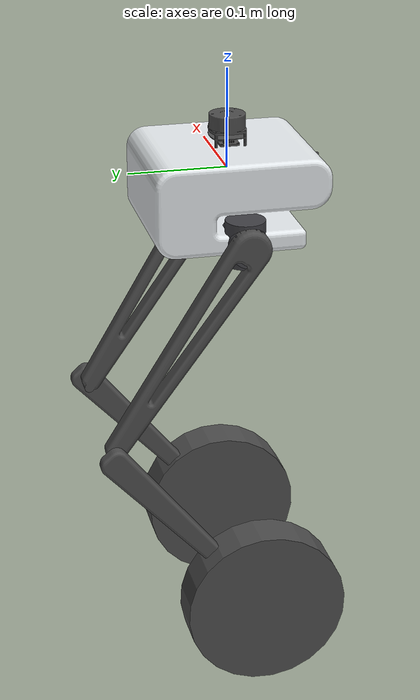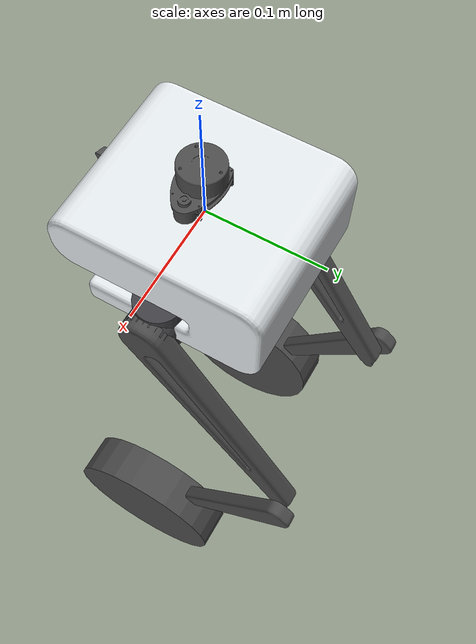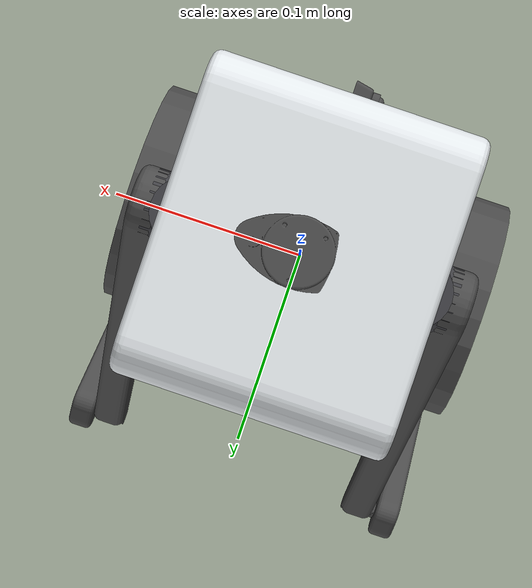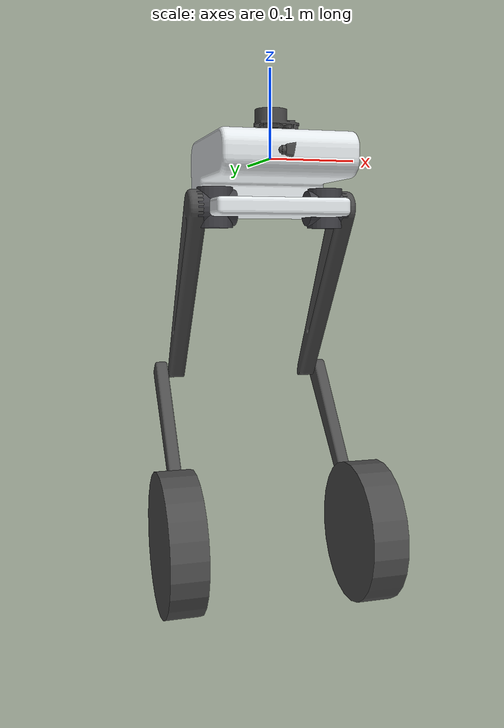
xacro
<?xml version="1.0"?>
<robot name="urdf_and_meshes_of_the_robot" xmlns:xacro="http://ros.org/wiki/xacro">

  <!-- Absolute path to config/controllers.yaml, passed in by balance.launch.py -->
  <xacro:arg name="controllers_file" default=""/>

  <!-- Reuse all links & joints (wheel/leg limits already widened for control) -->
  <xacro:include filename="$(find urdf_and_meshes_of_the_robot)/urdf/mybot_geometry.urdf.xacro"/>

  <!-- Publishes sensor_msgs/Imu on /imu                              -->
  <gazebo reference="IMU_link">
    <sensor name="imu_sensor" type="imu">
      <always_on>true</always_on>
      <update_rate>200.0</update_rate>
      <visualize>false</visualize>
      <plugin name="imu_plugin" filename="libgazebo_ros_imu_sensor.so">
        <ros>
          <namespace>/</namespace>
          <remapping>~/out:=/imu</remapping>
        </ros>
        <initial_orientation_as_reference>false</initial_orientation_as_reference>
        <frame_name>IMU_link</frame_name>
      </plugin>
    </sensor>
  </gazebo>

  <!-- Wheel friction (rubber on ground) for reliable traction        -->
  <gazebo reference="Left_wheel">
    <mu1>1.2</mu1>
    <mu2>1.2</mu2>
    <kp>100000.0</kp>
    <kd>1.0</kd>
    <material>Gazebo/Black</material>
  </gazebo>
  <gazebo reference="Right_wheel">
    <mu1>1.2</mu1>
    <mu2>1.2</mu2>
    <kp>100000.0</kp>
    <kd>1.0</kd>
    <material>Gazebo/Black</material>
  </gazebo>

  <!-- Hip actuator housings: dark grey in Gazebo -->
  <gazebo reference="hip_yaw_link_left"><material>Gazebo/DarkGrey</material></gazebo>
  <gazebo reference="hip_roll_link_left"><material>Gazebo/DarkGrey</material></gazebo>
  <gazebo reference="hip_yaw_link_right"><material>Gazebo/DarkGrey</material></gazebo>
  <gazebo reference="hip_roll_link_right"><material>Gazebo/DarkGrey</material></gazebo>

  <!-- ros2_control hardware interfaces (gazebo_ros2_control)          -->
  <ros2_control name="GazeboSystem" type="system">
    <hardware>
      <plugin>gazebo_ros2_control/GazeboSystem</plugin>
    </hardware>

    <!-- ===== Wheels: effort (torque) control ===== -->
    <joint name="Left_joint">
      <command_interface name="effort">
        <param name="min">-20.0</param>
        <param name="max">20.0</param>
      </command_interface>
      <state_interface name="position"/>
      <state_interface name="velocity"/>
      <state_interface name="effort"/>
    </joint>
    <joint name="Right_joint">
      <command_interface name="effort">
        <param name="min">-20.0</param>
        <param name="max">20.0</param>
      </command_interface>
      <state_interface name="position"/>
      <state_interface name="velocity"/>
      <state_interface name="effort"/>
    </joint>

    <xacro:unless value="$(arg lock_legs)">
    <joint name="hip_yaw_left">
      <command_interface name="effort">
        <param name="min">-200.0</param>
        <param name="max">200.0</param>
      </command_interface>
      <state_interface name="position"/>
      <state_interface name="velocity"/>
    </joint>
    <joint name="hip_roll_left">
      <command_interface name="effort">
        <param name="min">-200.0</param>
        <param name="max">200.0</param>
      </command_interface>
      <state_interface name="position"/>
      <state_interface name="velocity"/>
    </joint>
    <joint name="Upper_left_joint">
      <command_interface name="effort">
        <param name="min">-200.0</param>
        <param name="max">200.0</param>
      </command_interface>
      <state_interface name="position"/>
      <state_interface name="velocity"/>
    </joint>
    <joint name="Lower_left_joint">
      <command_interface name="effort">
        <param name="min">-200.0</param>
        <param name="max">200.0</param>
      </command_interface>
      <state_interface name="position"/>
      <state_interface name="velocity"/>
    </joint>
    <joint name="hip_yaw_right">
      <command_interface name="effort">
        <param name="min">-200.0</param>
        <param name="max">200.0</param>
      </command_interface>
      <state_interface name="position"/>
      <state_interface name="velocity"/>
    </joint>
    <joint name="hip_roll_right">
      <command_interface name="effort">
        <param name="min">-200.0</param>
        <param name="max">200.0</param>
      </command_interface>
      <state_interface name="position"/>
      <state_interface name="velocity"/>
    </joint>
    <joint name="Upper_right_joint">
      <command_interface name="effort">
        <param name="min">-200.0</param>
        <param name="max">200.0</param>
      </command_interface>
      <state_interface name="position"/>
      <state_interface name="velocity"/>
    </joint>
    <joint name="Lower_right_joint">
      <command_interface name="effort">
        <param name="min">-200.0</param>
        <param name="max">200.0</param>
      </command_interface>
      <state_interface name="position"/>
      <state_interface name="velocity"/>
    </joint>
    </xacro:unless>
  </ros2_control>

  <!-- gazebo_ros2_control plugin: starts the controller_manager      -->
  <!-- inside gzserver and loads config/controllers.yaml              -->
  <gazebo>
    <plugin filename="libgazebo_ros2_control.so" name="gazebo_ros2_control">
      <parameters>$(arg controllers_file)</parameters>
    </plugin>
  </gazebo>

</robot>

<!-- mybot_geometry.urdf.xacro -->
<robot name="urdf_and_meshes_of_the_robot" xmlns:xacro = "http://ros.org/wiki/xacro">

  <xacro:arg name="lock_legs" default="true"/>
  <xacro:property name="_ljt" value="${'fixed' if '$(arg lock_legs)' == 'true' else 'revolute'}"/>

  <link name="base_link"/>  <!-- Dummy link added -->
  <joint name="base_joint" type="fixed">
    <parent link="base_link"/>
    <child link="BODY_link"/>
  </joint>

  <link
    name="BODY_link">
    <inertial>
      <origin
        xyz="7.3062E-18 0.0022646 -0.021333"
        rpy="0 0 0" />
      <mass
        value="1.25696760938142" />
      <inertia
        ixx="0.0045914"
        ixy="1.4409E-18"
        ixz="-1.9104E-19"
        iyy="0.004286"
        iyz="0.00013476"
        izz="0.0063727" />
    </inertial>
    <visual>
      <origin
        xyz="0 0 0"
        rpy="0 0 0" />
      <geometry>
        <mesh
          filename="package://urdf_and_meshes_of_the_robot/meshes/BODY_link.STL"/>
      </geometry>
      <material
        name="Alumuniam 1060 Alloy">
        <color
          rgba="0.89804 0.91765 0.92941 1" />
      </material>
    </visual>
    <collision>
      <origin
        xyz="0 0 0"
        rpy="0 0 0" />
      <geometry>
        <mesh
          filename="package://urdf_and_meshes_of_the_robot/meshes/BODY_link.STL" />
      </geometry>
    </collision>
  </link>
  <link
    name="Upper_left_leg">
    <inertial>
      <origin
        xyz="6.6396E-09 -0.10715 0.021958"
        rpy="0 0 0" />
      <mass
        value="0.32627" />
      <inertia
        ixx="0.0021991"
        ixy="-1.3036E-10"
        ixz="-2.948E-10"
        iyy="4.2897E-05"
        iyz="3.6799E-06"
        izz="0.0022214" />
    </inertial>
    <visual>
      <origin
        xyz="0 0 0"
        rpy="0 0 0" />
      <geometry>
        <mesh
          filename="package://urdf_and_meshes_of_the_robot/meshes/Upper_left_leg.STL" />
      </geometry>
      <material
        name="Alumuniam 1060 Alloy">
        <color
          rgba="0.29804 0.29804 0.29804 1" />
      </material>
    </visual>
    <collision>
      <origin
        xyz="0 0 0"
        rpy="0 0 0" />
      <geometry>
        <mesh
          filename="package://urdf_and_meshes_of_the_robot/meshes/Upper_left_leg.STL" />
      </geometry>
    </collision>
  </link>
  <!-- ===================== LEFT HIP : 3-DOF (yaw -> roll -> pitch) ===================== -->
  <joint name="hip_yaw_left" type="${_ljt}">   <!-- free leg joint: actuated, held at stance for balance; RL-controlled for walking -->
    <origin xyz="0.065 -0.0025 -0.055" rpy="0 0 0" />
    <parent link="BODY_link" />
    <child link="hip_yaw_link_left" />
    <axis xyz="0 0 1" />
    <limit lower="-0.785" upper="0.785" effort="200" velocity="10" />
    <dynamics damping="0.5" friction="0.1"/>
  </joint>
  <link name="hip_yaw_link_left">
    <inertial>
      <mass value="0.12" />
      <inertia ixx="1e-4" ixy="0" ixz="0" iyy="1e-4" iyz="0" izz="1e-4" />
    </inertial>
    <visual>
      <origin xyz="0 0 0" rpy="0 0 0" />   <!-- yaw actuator: axis = Z (vertical) -->
      <geometry>
        <cylinder radius="0.02" length="0.045" />  <!-- placeholder; generated STL was malformed (crashed gzclient) -->
      </geometry>
      <material name="actuator_grey"><color rgba="0.25 0.25 0.27 1" /></material>
    </visual>
  </link>

  <joint name="hip_roll_left" type="${_ljt}">   <!-- free leg joint: actuated, held at stance for balance; RL-controlled for walking -->
    <origin xyz="0 0 0" rpy="0 0 0" />
    <parent link="hip_yaw_link_left" />
    <child link="hip_roll_link_left" />
    <axis xyz="1 0 0" />
    <limit lower="-0.785" upper="0.785" effort="200" velocity="10" />
    <dynamics damping="0.5" friction="0.1"/>
  </joint>
  <link name="hip_roll_link_left">
    <inertial>
      <mass value="0.12" />
      <inertia ixx="1e-4" ixy="0" ixz="0" iyy="1e-4" iyz="0" izz="1e-4" />
    </inertial>
    <visual>
      <origin xyz="0 0 0" rpy="0 1.5708 0" />   <!-- roll actuator: axis = X (horizontal) -->
      <geometry>
        <cylinder radius="0.02" length="0.045" />  <!-- placeholder; generated STL was malformed (crashed gzclient) -->
      </geometry>
      <material name="actuator_grey"><color rgba="0.25 0.25 0.27 1" /></material>
    </visual>
  </link>

  <joint
    name="Upper_left_joint"
    type="${_ljt}">   <!-- free leg joint: actuated, held at stance for balance; RL-controlled for walking -->
    <origin
      xyz="0 0 0"
      rpy="1.5708 -0.5686 1.5708" />
    <parent
      link="hip_roll_link_left" />
    <child
      link="Upper_left_leg" />
    <axis
      xyz="0 0 -1" />
    <limit
      lower="-1.57"
      upper="1.57"
      effort="200"
      velocity="30" />
    <dynamics damping="0.5" friction="0.1"/>
  </joint>
  <link
    name="Lower_left_leg">
    <inertial>
      <origin
        xyz="3.3987E-08 -0.095731 0.0075383"
        rpy="0 0 0" />
      <mass
        value="0.20779" />
      <inertia
        ixx="0.0010103"
        ixy="7.9033E-11"
        ixz="1.1732E-10"
        iyy="1.2421E-05"
        iyz="7.5525E-07"
        izz="0.0010151" />
    </inertial>
    <visual>
      <origin
        xyz="0 0 0"
        rpy="0 0 0" />
      <geometry>
        <mesh
          filename="package://urdf_and_meshes_of_the_robot/meshes/Lower_left_leg.STL" />
      </geometry>
      <material
        name="Alumuniam 1060 Alloy">
        <color
          rgba="0.29804 0.29804 0.29804 1" />
      </material>
    </visual>
    <collision>
      <origin
        xyz="0 0 0"
        rpy="0 0 0" />
      <geometry>
        <mesh
          filename="package://urdf_and_meshes_of_the_robot/meshes/Lower_left_leg.STL" />
      </geometry>
    </collision>
  </link>
  <joint
    name="Lower_left_joint"
    type="${_ljt}">   <!-- free leg joint: actuated, held at stance for balance; RL-controlled for walking -->
    <origin
      xyz="0 -0.24941 0.032"
      rpy="0 0 -1.2888" />
    <parent
      link="Upper_left_leg" />
    <child
      link="Lower_left_leg" />
    <axis
      xyz="0 0 1" />
    <limit
      lower="-1.57"
      upper="1.57"
      effort="200"
      velocity="30" />
    <dynamics damping="0.5" friction="0.1"/>
  </joint>
  <link
    name="Left_wheel">
    <inertial>
      <origin
        xyz="7.526E-08 -9.4982E-08 -0.021914"
        rpy="0 0 0" />
      <mass
        value="0.12382" />
      <inertia
        ixx="0.00019918"
        ixy="-2.4608E-10"
        ixz="-2.7634E-11"
        iyy="0.00019918"
        iyz="4.4186E-11"
        izz="0.0003757" />
    </inertial>
    <visual>
      <origin
        xyz="0 0 0"
        rpy="0 0 0" />
      <geometry>
        <cylinder radius="0.0826" length="0.0422" />  <!-- was 551k-tri mesh: ~1 min to load -->
      </geometry>
      <material
        name="Rubber">
        <color
          rgba="0.29804 0.29804 0.29804 1" />
      </material>
    </visual>
    <collision>
      <!-- Cylinder collision instead of the 551k-triangle mesh: far faster to load
           and far better/stabler wheel-ground contact for balancing. -->
      <origin xyz="0 0 -0.0211" rpy="0 0 0" />
      <geometry>
        <cylinder radius="0.0826" length="0.0422" />
      </geometry>
    </collision>
  </link>
  <joint
    name="Left_joint"
    type="continuous">
    <origin
      xyz="0 -0.22885 0.015"
      rpy="3.1416 0 0.81783" />
    <parent
      link="Lower_left_leg" />
    <child
      link="Left_wheel" />
    <axis
      xyz="0 0 1" />
    <limit
      lower="-1.57"
      upper="1.57"
      effort="200"
      velocity="30" />
  </joint>
  <link
    name="Upper_right_link">
    <inertial>
      <origin
        xyz="9.6623E-09 -0.10715 0.021958"
        rpy="0 0 0" />
      <mass
        value="0.32627" />
      <inertia
        ixx="0.0021991"
        ixy="-1.7623E-10"
        ixz="-2.9281E-10"
        iyy="4.2897E-05"
        iyz="3.6798E-06"
        izz="0.0022214" />
    </inertial>
    <visual>
      <origin
        xyz="0 0 0"
        rpy="0 0 0" />
      <geometry>
        <mesh
          filename="package://urdf_and_meshes_of_the_robot/meshes/Upper_right_link.STL" />
      </geometry>
      <material
        name="Alumuniam 1060 Alloy">
        <color
          rgba="0.29804 0.29804 0.29804 1" />
      </material>
    </visual>
    <collision>
      <origin
        xyz="0 0 0"
        rpy="0 0 0" />
      <geometry>
        <mesh
          filename="package://urdf_and_meshes_of_the_robot/meshes/Upper_right_link.STL" />
      </geometry>
    </collision>
  </link>
  <!-- ===================== RIGHT HIP : 3-DOF (yaw -> roll -> pitch) ===================== -->
  <joint name="hip_yaw_right" type="${_ljt}">   <!-- free leg joint: actuated, held at stance for balance; RL-controlled for walking -->
    <origin xyz="-0.065 -0.0025 -0.055" rpy="0 0 0" />
    <parent link="BODY_link" />
    <child link="hip_yaw_link_right" />
    <axis xyz="0 0 1" />
    <limit lower="-0.785" upper="0.785" effort="200" velocity="10" />
    <dynamics damping="0.5" friction="0.1"/>
  </joint>
  <link name="hip_yaw_link_right">
    <inertial>
      <mass value="0.12" />
      <inertia ixx="1e-4" ixy="0" ixz="0" iyy="1e-4" iyz="0" izz="1e-4" />
    </inertial>
    <visual>
      <origin xyz="0 0 0" rpy="0 0 0" />   <!-- yaw actuator: axis = Z (vertical) -->
      <geometry>
        <cylinder radius="0.02" length="0.045" />  <!-- placeholder; generated STL was malformed (crashed gzclient) -->
      </geometry>
      <material name="actuator_grey"><color rgba="0.25 0.25 0.27 1" /></material>
    </visual>
  </link>

  <joint name="hip_roll_right" type="${_ljt}">   <!-- free leg joint: actuated, held at stance for balance; RL-controlled for walking -->
    <origin xyz="0 0 0" rpy="0 0 0" />
    <parent link="hip_yaw_link_right" />
    <child link="hip_roll_link_right" />
    <axis xyz="1 0 0" />
    <limit lower="-0.785" upper="0.785" effort="200" velocity="10" />
    <dynamics damping="0.5" friction="0.1"/>
  </joint>
  <link name="hip_roll_link_right">
    <inertial>
      <mass value="0.12" />
      <inertia ixx="1e-4" ixy="0" ixz="0" iyy="1e-4" iyz="0" izz="1e-4" />
    </inertial>
    <visual>
      <origin xyz="0 0 0" rpy="0 1.5708 0" />   <!-- roll actuator: axis = X (horizontal) -->
      <geometry>
        <cylinder radius="0.02" length="0.045" />  <!-- placeholder; generated STL was malformed (crashed gzclient) -->
      </geometry>
      <material name="actuator_grey"><color rgba="0.25 0.25 0.27 1" /></material>
    </visual>
  </link>

  <joint
    name="Upper_right_joint"
    type="${_ljt}">   <!-- free leg joint: actuated, held at stance for balance; RL-controlled for walking -->
    <origin
      xyz="0 0 0"
      rpy="1.5708 0.59611 -1.5708" />
    <parent
      link="hip_roll_link_right" />
    <child
      link="Upper_right_link" />
    <axis
      xyz="0 0 1" />
    <limit
      lower="-1.57"
      upper="1.57"
      effort="200"
      velocity="30" />
    <dynamics damping="0.5" friction="0.1"/>
  </joint>
  <link
    name="Lower_right_link">
    <inertial>
      <origin
        xyz="3.29E-08 -0.095731 0.0075383"
        rpy="0 0 0" />
      <mass
        value="0.20779" />
      <inertia
        ixx="0.0010103"
        ixy="8.8706E-11"
        ixz="1.1747E-10"
        iyy="1.2421E-05"
        iyz="7.5523E-07"
        izz="0.0010151" />
    </inertial>
    <visual>
      <origin
        xyz="0 0 0"
        rpy="0 0 0" />
      <geometry>
        <mesh
          filename="package://urdf_and_meshes_of_the_robot/meshes/Lower_right_link.STL" />
      </geometry>
      <material
        name="Alumuniam 1060 Alloy">
        <color
          rgba="0.29804 0.29804 0.29804 1" />
      </material>
    </visual>
    <collision>
      <origin
        xyz="0 0 0"
        rpy="0 0 0" />
      <geometry>
        <mesh
          filename="package://urdf_and_meshes_of_the_robot/meshes/Lower_right_link.STL" />
      </geometry>
    </collision>
  </link>
  <joint
    name="Lower_right_joint"
    type="${_ljt}">   <!-- free leg joint: actuated, held at stance for balance; RL-controlled for walking -->
    <origin
      xyz="0 -0.24941 0.034"
      rpy="0 0 1.3094" />
    <parent
      link="Upper_right_link" />
    <child
      link="Lower_right_link" />
    <axis
      xyz="0 0 1" />
    <limit
      lower="-1.57"
      upper="1.57"
      effort="200"
      velocity="30" />
    <dynamics damping="0.5" friction="0.1"/>
  </joint>
  <link
    name="Right_wheel">
    <inertial>
      <origin
        xyz="2.9114E-08 -9.5306E-09 -0.021914"
        rpy="0 0 0" />
      <mass
        value="0.12382" />
      <inertia
        ixx="0.00019918"
        ixy="-2.1966E-10"
        ixz="-1.9165E-11"
        iyy="0.00019918"
        iyz="2.7688E-11"
        izz="0.0003757" />
    </inertial>
    <visual>
      <origin
        xyz="0 0 0"
        rpy="0 0 0" />
      <geometry>
        <cylinder radius="0.0826" length="0.0422" />  <!-- was 551k-tri mesh: ~1 min to load -->
      </geometry>
      <material
        name="Rubber ">
        <color
          rgba="0.29804 0.29804 0.29804 1" />
      </material>
    </visual>
    <collision>
      <!-- Cylinder collision instead of the 551k-triangle mesh (see Left_wheel). -->
      <origin xyz="0 0 -0.0211" rpy="0 0 0" />
      <geometry>
        <cylinder radius="0.0826" length="0.0422" />
      </geometry>
    </collision>
  </link>
  <joint
    name="Right_joint"
    type="continuous">
    <origin
      xyz="0 -0.22885 0.015"
      rpy="3.1416 0 0.41886" />
    <parent
      link="Lower_right_link" />
    <child
      link="Right_wheel" />
    <axis
      xyz="0 0 1" />
  </joint>

  <link
    name="lidar_link">
    <inertial>
      <origin
        xyz="-0.00748253542434936 0.0106650182159227 9.18484888063789E-05"
        rpy="0 0 0" />
      <mass
        value="0.023982866275303" />
      <inertia
        ixx="2.99648036688873E-06"
        ixy="7.71082922354325E-07"
        ixz="3.90085076397272E-09"
        iyy="5.35270613804163E-06"
        iyz="1.5091352201716E-08"
        izz="4.68185693441384E-06" />
    </inertial>
    <visual>
      <origin
        xyz="0 0 0"
        rpy="0 0 0" />
      <geometry>
        <mesh
          filename="package://urdf_and_meshes_of_the_robot/meshes/lidar_link.STL" />
      </geometry>
      <material
        name="">
        <color
          rgba="0.298039215686275 0.298039215686275 0.298039215686275 1" />
      </material>
    </visual>
    <collision>
      <origin
        xyz="0 0 0"
        rpy="0 0 0" />
      <geometry>
        <mesh
          filename="package://urdf_and_meshes_of_the_robot/meshes/lidar_link.STL" />
      </geometry>
    </collision>
  </link>
  <joint
    name="lidar_joint"
    type="fixed">
    <origin
      xyz="0.0118364652961996 4.41245333220815E-05 0.0326712986882367"
      rpy="1.5707963267949 0 0" />
    <parent
      link="BODY_link" />
    <child
      link="lidar_link" />
    <axis
      xyz="0 0 0" />
  </joint>
  <link
    name="camera_link">
    <inertial>
      <origin
        xyz="-1.00991565614951E-09 0.000394686414877599 0.00613911034094791"
        rpy="0 0 0" />
      <mass
        value="0.00182332100343475" />
      <inertia
        ixx="4.92416087597433E-08"
        ixy="1.34622570853428E-15"
        ixz="-2.02896607135891E-15"
        iyy="4.93405437288816E-08"
        iyz="3.4862884852944E-09"
        izz="4.40227961832514E-08" />
    </inertial>
    <visual>
      <origin
        xyz="0 0 0"
        rpy="0 0 0" />
      <geometry>
        <mesh
          filename="package://urdf_and_meshes_of_the_robot/meshes/camera_link.STL" />
      </geometry>
      <material
        name="">
        <color
          rgba="0.298039215686275 0.298039215686275 0.298039215686275 1" />
      </material>
    </visual>
    <collision>
      <origin
        xyz="0 0 0"
        rpy="0 0 0" />
      <geometry>
        <mesh
          filename="package://urdf_and_meshes_of_the_robot/meshes/camera_link.STL" />
      </geometry>
    </collision>
  </link>

  <joint
    name="camera_joint"
    type="fixed">
    <origin
      xyz="0 -0.0868463319293926 0.00105377166734255"
      rpy="1.57 0 -1.57" />
    <parent
      link="BODY_link" />
    <child
      link="camera_link" />
    <axis
      xyz="0 0 0" />
  </joint>

  <!-- Define the optical frame link with a unique name -->
  <link name="camera_link_optical"></link>

  <!-- Define the joint with a unique name -->
  <joint name="camera_optical_joint" type="fixed">
    <origin xyz="0 0 0" rpy="-1.57079632679 0 -1.57079632679" />
    <parent link="camera_link" />
    <child link="camera_link_optical" />
  </joint>

  <link
    name="IMU_link">
    <inertial>
      <origin
        xyz="3.83749968898417E-06 0.00114501984172181 -0.000169625278521169"
        rpy="0 0 0" />
      <mass
        value="0.00107255708196703" />
      <inertia
        ixx="3.33321450865841E-08"
        ixy="-7.41397232762258E-12"
        ixz="3.16411212611588E-10"
        iyy="8.73841360657296E-08"
        iyz="3.39318638686155E-10"
        izz="5.53349807702084E-08" />
    </inertial>
    <visual>
      <origin
        xyz="0 0 0"
        rpy="0 0 0" />
      <geometry>
        <mesh
          filename="package://urdf_and_meshes_of_the_robot/meshes/IMU_link.STL" />
      </geometry>
      <material
        name="">
        <color
          rgba="0.298039215686275 0.298039215686275 0.298039215686275 1" />
      </material>
    </visual>
    <collision>
      <origin
        xyz="0 0 0"
        rpy="0 0 0" />
      <geometry>
        <mesh
          filename="package://urdf_and_meshes_of_the_robot/meshes/IMU_link.STL" />
      </geometry>
    </collision>
  </link>
  <joint
    name="IMU_joint"
    type="fixed">
    <origin
      xyz="0 0 0.025"
      rpy="1.5708 0 0" />
    <parent
      link="BODY_link" />
    <child
      link="IMU_link" />
    <axis
      xyz="0 0 0" />
  </joint>
</robot>
